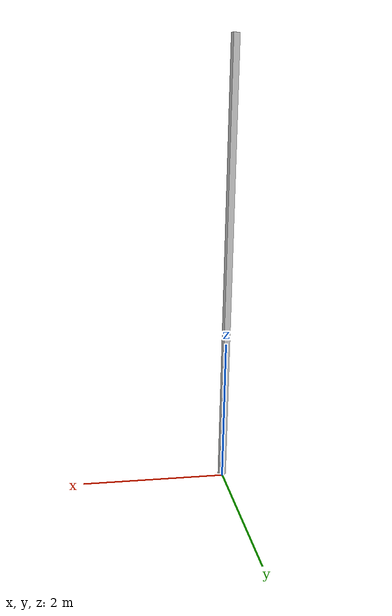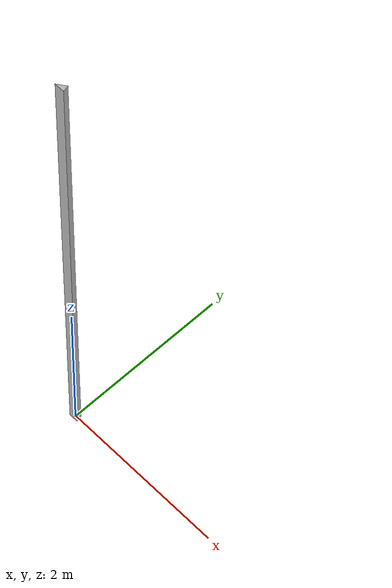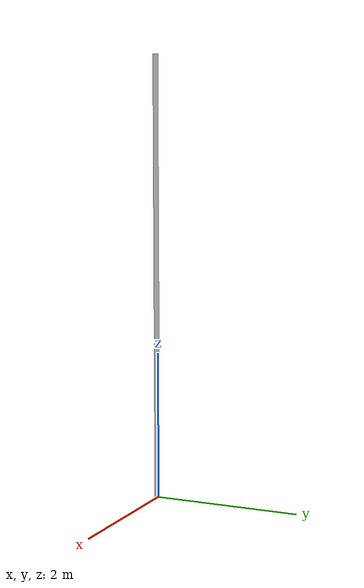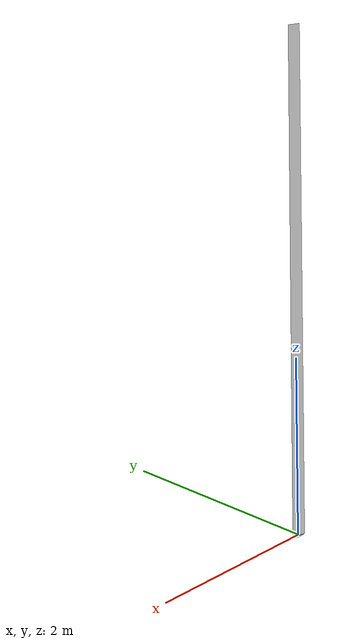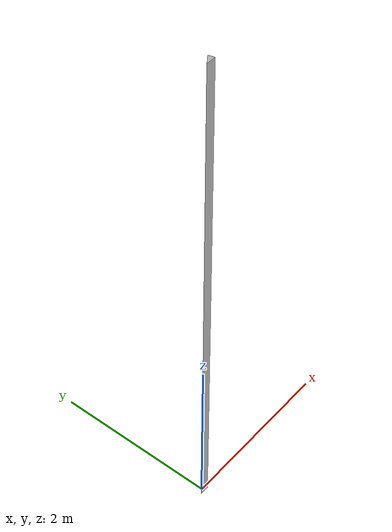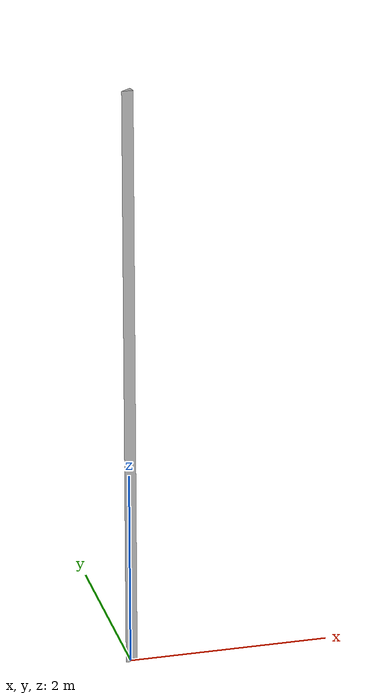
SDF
<?xml version="1.0" ?>
<sdf version="1.7">
  <model name="building_6216_assumed_a_casa">
    <static>true</static>
    <link name="building_link">
      <visual name="building_visual">
        <geometry>
          <mesh>
            <uri>model://building_6216_assumed_a_casa/meshes/construction_6216_assumed_A_Casa_h6m.obj</uri>
          </mesh>
        </geometry>
      </visual>
    <collision name="building_collision">
      <geometry>
        <mesh>
          <uri>model://building_6216_assumed_a_casa/meshes/construction_6216_assumed_A_Casa_h6m.obj</uri>
        </mesh>
      </geometry>
    </collision>
    </link>
  </model>
</sdf>
